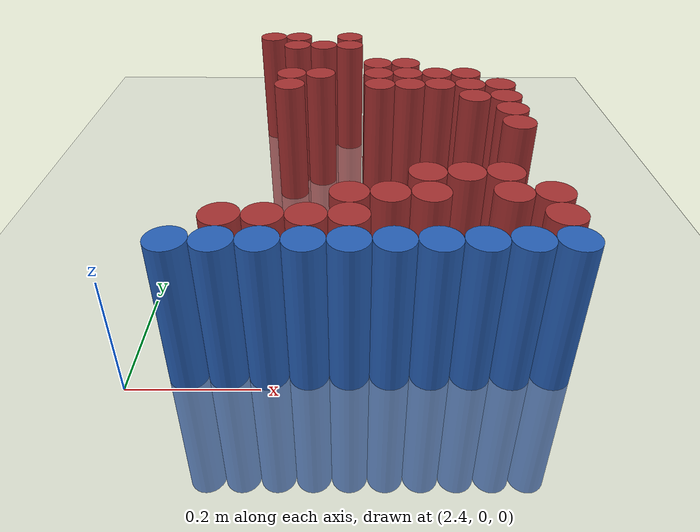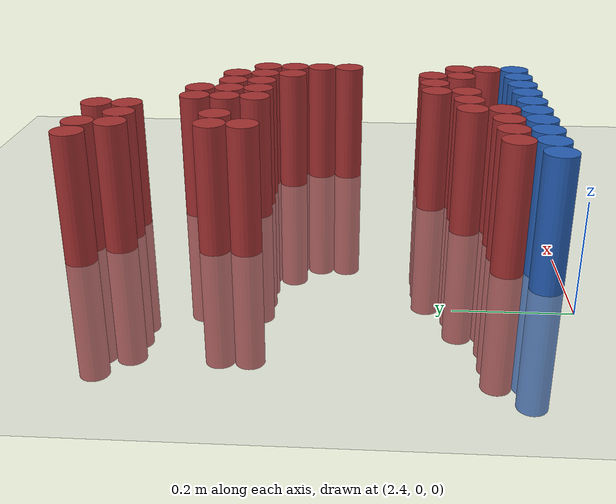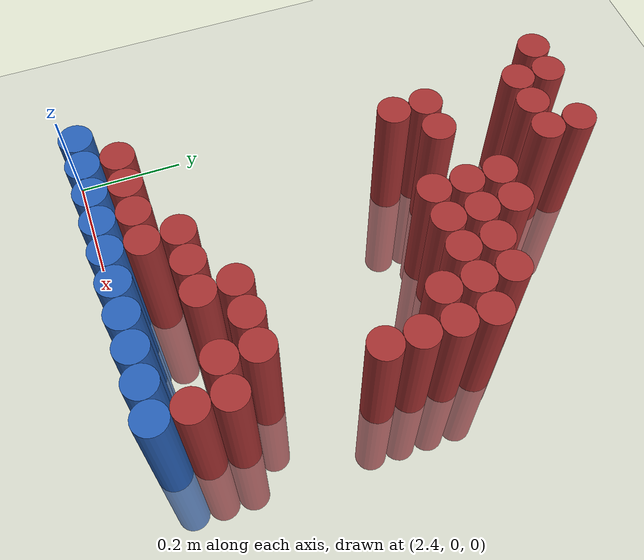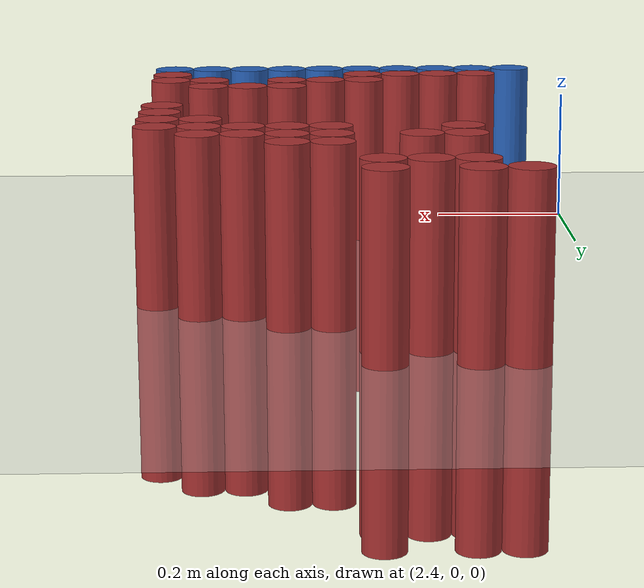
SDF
<sdf version="1.6">
 <world name="default">
  <model name="ground_plane">
   <static>1</static>
   <link name="link">
    <collision name="collision">
     <geometry><plane><normal>0 0 1</normal><size>100 100</size></plane></geometry>
     <surface><friction><ode><mu>100</mu><mu2>50</mu2></ode></friction></surface>
    </collision>
    <visual name="visual">
     <cast_shadows>0</cast_shadows>
     <geometry><plane><normal>0 0 1</normal><size>100 100</size></plane></geometry>
     <material>
      <script><uri>file://media/materials/scripts/gazebo.material</uri><name>Gazebo/Grey</name></script>
     </material>
    </visual>
   </link>
  </model>
  <model name="unit_cylinder_212">
   <static>1</static>
   <pose>2.550000 0.870000 0.000000 0.000000 0.000000 0.000000</pose>
   <link name="link">
    <inertial>
     <mass>1</mass>
     <inertia><ixx>0.145833</ixx><ixy>0</ixy><ixz>0</ixz><iyy>0.145833</iyy><iyz>0</iyz><izz>0.125</izz></inertia>
    </inertial>
    <collision name="collision">
     <geometry><cylinder><radius>0.030000</radius><length>0.5</length></cylinder></geometry>
    </collision>
    <visual name="visual">
     <geometry><cylinder><radius>0.030000</radius><length>0.5</length></cylinder></geometry>
     <material>
      <ambient>0.648000 0.192000 0.192000 1</ambient>
      <diffuse>0.648000 0.192000 0.192000 1</diffuse>
     </material>
     <material>
      <script><name>Gazebo/Grey</name><uri>file://media/materials/scripts/gazebo.material</uri></script>
     </material>
    </visual>
   </link>
  </model>
  <model name="unit_cylinder_213">
   <static>1</static>
   <pose>2.610000 0.870000 0.000000 0.000000 0.000000 0.000000</pose>
   <link name="link">
    <inertial>
     <mass>1</mass>
     <inertia><ixx>0.145833</ixx><ixy>0</ixy><ixz>0</ixz><iyy>0.145833</iyy><iyz>0</iyz><izz>0.125</izz></inertia>
    </inertial>
    <collision name="collision">
     <geometry><cylinder><radius>0.030000</radius><length>0.5</length></cylinder></geometry>
    </collision>
    <visual name="visual">
     <geometry><cylinder><radius>0.030000</radius><length>0.5</length></cylinder></geometry>
     <material>
      <ambient>0.648000 0.192000 0.192000 1</ambient>
      <diffuse>0.648000 0.192000 0.192000 1</diffuse>
     </material>
     <material>
      <script><name>Gazebo/Grey</name><uri>file://media/materials/scripts/gazebo.material</uri></script>
     </material>
    </visual>
   </link>
  </model>
  <model name="unit_cylinder_214">
   <static>1</static>
   <pose>2.730000 0.870000 0.000000 0.000000 0.000000 0.000000</pose>
   <link name="link">
    <inertial>
     <mass>1</mass>
     <inertia><ixx>0.145833</ixx><ixy>0</ixy><ixz>0</ixz><iyy>0.145833</iyy><iyz>0</iyz><izz>0.125</izz></inertia>
    </inertial>
    <collision name="collision">
     <geometry><cylinder><radius>0.030000</radius><length>0.5</length></cylinder></geometry>
    </collision>
    <visual name="visual">
     <geometry><cylinder><radius>0.030000</radius><length>0.5</length></cylinder></geometry>
     <material>
      <ambient>0.648000 0.192000 0.192000 1</ambient>
      <diffuse>0.648000 0.192000 0.192000 1</diffuse>
     </material>
     <material>
      <script><name>Gazebo/Grey</name><uri>file://media/materials/scripts/gazebo.material</uri></script>
     </material>
    </visual>
   </link>
  </model>
  <model name="unit_cylinder_219">
   <static>1</static>
   <pose>2.610000 0.810000 0.000000 0.000000 0.000000 0.000000</pose>
   <link name="link">
    <inertial>
     <mass>1</mass>
     <inertia><ixx>0.145833</ixx><ixy>0</ixy><ixz>0</ixz><iyy>0.145833</iyy><iyz>0</iyz><izz>0.125</izz></inertia>
    </inertial>
    <collision name="collision">
     <geometry><cylinder><radius>0.030000</radius><length>0.5</length></cylinder></geometry>
    </collision>
    <visual name="visual">
     <geometry><cylinder><radius>0.030000</radius><length>0.5</length></cylinder></geometry>
     <material>
      <ambient>0.648000 0.192000 0.192000 1</ambient>
      <diffuse>0.648000 0.192000 0.192000 1</diffuse>
     </material>
     <material>
      <script><name>Gazebo/Grey</name><uri>file://media/materials/scripts/gazebo.material</uri></script>
     </material>
    </visual>
   </link>
  </model>
  <model name="unit_cylinder_220">
   <static>1</static>
   <pose>2.670000 0.810000 0.000000 0.000000 0.000000 0.000000</pose>
   <link name="link">
    <inertial>
     <mass>1</mass>
     <inertia><ixx>0.145833</ixx><ixy>0</ixy><ixz>0</ixz><iyy>0.145833</iyy><iyz>0</iyz><izz>0.125</izz></inertia>
    </inertial>
    <collision name="collision">
     <geometry><cylinder><radius>0.030000</radius><length>0.5</length></cylinder></geometry>
    </collision>
    <visual name="visual">
     <geometry><cylinder><radius>0.030000</radius><length>0.5</length></cylinder></geometry>
     <material>
      <ambient>0.648000 0.192000 0.192000 1</ambient>
      <diffuse>0.648000 0.192000 0.192000 1</diffuse>
     </material>
     <material>
      <script><name>Gazebo/Grey</name><uri>file://media/materials/scripts/gazebo.material</uri></script>
     </material>
    </visual>
   </link>
  </model>
  <model name="unit_cylinder_221">
   <static>1</static>
   <pose>2.730000 0.810000 0.000000 0.000000 0.000000 0.000000</pose>
   <link name="link">
    <inertial>
     <mass>1</mass>
     <inertia><ixx>0.145833</ixx><ixy>0</ixy><ixz>0</ixz><iyy>0.145833</iyy><iyz>0</iyz><izz>0.125</izz></inertia>
    </inertial>
    <collision name="collision">
     <geometry><cylinder><radius>0.030000</radius><length>0.5</length></cylinder></geometry>
    </collision>
    <visual name="visual">
     <geometry><cylinder><radius>0.030000</radius><length>0.5</length></cylinder></geometry>
     <material>
      <ambient>0.648000 0.192000 0.192000 1</ambient>
      <diffuse>0.648000 0.192000 0.192000 1</diffuse>
     </material>
     <material>
      <script><name>Gazebo/Grey</name><uri>file://media/materials/scripts/gazebo.material</uri></script>
     </material>
    </visual>
   </link>
  </model>
  <model name="unit_cylinder_228">
   <static>1</static>
   <pose>2.790000 0.690000 0.000000 0.000000 0.000000 0.000000</pose>
   <link name="link">
    <inertial>
     <mass>1</mass>
     <inertia><ixx>0.145833</ixx><ixy>0</ixy><ixz>0</ixz><iyy>0.145833</iyy><iyz>0</iyz><izz>0.125</izz></inertia>
    </inertial>
    <collision name="collision">
     <geometry><cylinder><radius>0.030000</radius><length>0.5</length></cylinder></geometry>
    </collision>
    <visual name="visual">
     <geometry><cylinder><radius>0.030000</radius><length>0.5</length></cylinder></geometry>
     <material>
      <ambient>0.648000 0.192000 0.192000 1</ambient>
      <diffuse>0.648000 0.192000 0.192000 1</diffuse>
     </material>
     <material>
      <script><name>Gazebo/Grey</name><uri>file://media/materials/scripts/gazebo.material</uri></script>
     </material>
    </visual>
   </link>
  </model>
  <model name="unit_cylinder_229">
   <static>1</static>
   <pose>2.850000 0.690000 0.000000 0.000000 0.000000 0.000000</pose>
   <link name="link">
    <inertial>
     <mass>1</mass>
     <inertia><ixx>0.145833</ixx><ixy>0</ixy><ixz>0</ixz><iyy>0.145833</iyy><iyz>0</iyz><izz>0.125</izz></inertia>
    </inertial>
    <collision name="collision">
     <geometry><cylinder><radius>0.030000</radius><length>0.5</length></cylinder></geometry>
    </collision>
    <visual name="visual">
     <geometry><cylinder><radius>0.030000</radius><length>0.5</length></cylinder></geometry>
     <material>
      <ambient>0.648000 0.192000 0.192000 1</ambient>
      <diffuse>0.648000 0.192000 0.192000 1</diffuse>
     </material>
     <material>
      <script><name>Gazebo/Grey</name><uri>file://media/materials/scripts/gazebo.material</uri></script>
     </material>
    </visual>
   </link>
  </model>
  <model name="unit_cylinder_235">
   <static>1</static>
   <pose>2.610000 0.630000 0.000000 0.000000 0.000000 0.000000</pose>
   <link name="link">
    <inertial>
     <mass>1</mass>
     <inertia><ixx>0.145833</ixx><ixy>0</ixy><ixz>0</ixz><iyy>0.145833</iyy><iyz>0</iyz><izz>0.125</izz></inertia>
    </inertial>
    <collision name="collision">
     <geometry><cylinder><radius>0.030000</radius><length>0.5</length></cylinder></geometry>
    </collision>
    <visual name="visual">
     <geometry><cylinder><radius>0.030000</radius><length>0.5</length></cylinder></geometry>
     <material>
      <ambient>0.648000 0.192000 0.192000 1</ambient>
      <diffuse>0.648000 0.192000 0.192000 1</diffuse>
     </material>
     <material>
      <script><name>Gazebo/Grey</name><uri>file://media/materials/scripts/gazebo.material</uri></script>
     </material>
    </visual>
   </link>
  </model>
  <model name="unit_cylinder_236">
   <static>1</static>
   <pose>2.670000 0.630000 0.000000 0.000000 0.000000 0.000000</pose>
   <link name="link">
    <inertial>
     <mass>1</mass>
     <inertia><ixx>0.145833</ixx><ixy>0</ixy><ixz>0</ixz><iyy>0.145833</iyy><iyz>0</iyz><izz>0.125</izz></inertia>
    </inertial>
    <collision name="collision">
     <geometry><cylinder><radius>0.030000</radius><length>0.5</length></cylinder></geometry>
    </collision>
    <visual name="visual">
     <geometry><cylinder><radius>0.030000</radius><length>0.5</length></cylinder></geometry>
     <material>
      <ambient>0.648000 0.192000 0.192000 1</ambient>
      <diffuse>0.648000 0.192000 0.192000 1</diffuse>
     </material>
     <material>
      <script><name>Gazebo/Grey</name><uri>file://media/materials/scripts/gazebo.material</uri></script>
     </material>
    </visual>
   </link>
  </model>
  <model name="unit_cylinder_237">
   <static>1</static>
   <pose>2.790000 0.630000 0.000000 0.000000 0.000000 0.000000</pose>
   <link name="link">
    <inertial>
     <mass>1</mass>
     <inertia><ixx>0.145833</ixx><ixy>0</ixy><ixz>0</ixz><iyy>0.145833</iyy><iyz>0</iyz><izz>0.125</izz></inertia>
    </inertial>
    <collision name="collision">
     <geometry><cylinder><radius>0.030000</radius><length>0.5</length></cylinder></geometry>
    </collision>
    <visual name="visual">
     <geometry><cylinder><radius>0.030000</radius><length>0.5</length></cylinder></geometry>
     <material>
      <ambient>0.648000 0.192000 0.192000 1</ambient>
      <diffuse>0.648000 0.192000 0.192000 1</diffuse>
     </material>
     <material>
      <script><name>Gazebo/Grey</name><uri>file://media/materials/scripts/gazebo.material</uri></script>
     </material>
    </visual>
   </link>
  </model>
  <model name="unit_cylinder_238">
   <static>1</static>
   <pose>2.850000 0.630000 0.000000 0.000000 0.000000 0.000000</pose>
   <link name="link">
    <inertial>
     <mass>1</mass>
     <inertia><ixx>0.145833</ixx><ixy>0</ixy><ixz>0</ixz><iyy>0.145833</iyy><iyz>0</iyz><izz>0.125</izz></inertia>
    </inertial>
    <collision name="collision">
     <geometry><cylinder><radius>0.030000</radius><length>0.5</length></cylinder></geometry>
    </collision>
    <visual name="visual">
     <geometry><cylinder><radius>0.030000</radius><length>0.5</length></cylinder></geometry>
     <material>
      <ambient>0.648000 0.192000 0.192000 1</ambient>
      <diffuse>0.648000 0.192000 0.192000 1</diffuse>
     </material>
     <material>
      <script><name>Gazebo/Grey</name><uri>file://media/materials/scripts/gazebo.material</uri></script>
     </material>
    </visual>
   </link>
  </model>
  <model name="unit_cylinder_239">
   <static>1</static>
   <pose>2.910000 0.630000 0.000000 0.000000 0.000000 0.000000</pose>
   <link name="link">
    <inertial>
     <mass>1</mass>
     <inertia><ixx>0.145833</ixx><ixy>0</ixy><ixz>0</ixz><iyy>0.145833</iyy><iyz>0</iyz><izz>0.125</izz></inertia>
    </inertial>
    <collision name="collision">
     <geometry><cylinder><radius>0.030000</radius><length>0.5</length></cylinder></geometry>
    </collision>
    <visual name="visual">
     <geometry><cylinder><radius>0.030000</radius><length>0.5</length></cylinder></geometry>
     <material>
      <ambient>0.648000 0.192000 0.192000 1</ambient>
      <diffuse>0.648000 0.192000 0.192000 1</diffuse>
     </material>
     <material>
      <script><name>Gazebo/Grey</name><uri>file://media/materials/scripts/gazebo.material</uri></script>
     </material>
    </visual>
   </link>
  </model>
  <model name="unit_cylinder_240">
   <static>1</static>
   <pose>2.970000 0.630000 0.000000 0.000000 0.000000 0.000000</pose>
   <link name="link">
    <inertial>
     <mass>1</mass>
     <inertia><ixx>0.145833</ixx><ixy>0</ixy><ixz>0</ixz><iyy>0.145833</iyy><iyz>0</iyz><izz>0.125</izz></inertia>
    </inertial>
    <collision name="collision">
     <geometry><cylinder><radius>0.030000</radius><length>0.5</length></cylinder></geometry>
    </collision>
    <visual name="visual">
     <geometry><cylinder><radius>0.030000</radius><length>0.5</length></cylinder></geometry>
     <material>
      <ambient>0.648000 0.192000 0.192000 1</ambient>
      <diffuse>0.648000 0.192000 0.192000 1</diffuse>
     </material>
     <material>
      <script><name>Gazebo/Grey</name><uri>file://media/materials/scripts/gazebo.material</uri></script>
     </material>
    </visual>
   </link>
  </model>
  <model name="unit_cylinder_247">
   <static>1</static>
   <pose>2.610000 0.570000 0.000000 0.000000 0.000000 0.000000</pose>
   <link name="link">
    <inertial>
     <mass>1</mass>
     <inertia><ixx>0.145833</ixx><ixy>0</ixy><ixz>0</ixz><iyy>0.145833</iyy><iyz>0</iyz><izz>0.125</izz></inertia>
    </inertial>
    <collision name="collision">
     <geometry><cylinder><radius>0.030000</radius><length>0.5</length></cylinder></geometry>
    </collision>
    <visual name="visual">
     <geometry><cylinder><radius>0.030000</radius><length>0.5</length></cylinder></geometry>
     <material>
      <ambient>0.648000 0.192000 0.192000 1</ambient>
      <diffuse>0.648000 0.192000 0.192000 1</diffuse>
     </material>
     <material>
      <script><name>Gazebo/Grey</name><uri>file://media/materials/scripts/gazebo.material</uri></script>
     </material>
    </visual>
   </link>
  </model>
  <model name="unit_cylinder_248">
   <static>1</static>
   <pose>2.790000 0.570000 0.000000 0.000000 0.000000 0.000000</pose>
   <link name="link">
    <inertial>
     <mass>1</mass>
     <inertia><ixx>0.145833</ixx><ixy>0</ixy><ixz>0</ixz><iyy>0.145833</iyy><iyz>0</iyz><izz>0.125</izz></inertia>
    </inertial>
    <collision name="collision">
     <geometry><cylinder><radius>0.030000</radius><length>0.5</length></cylinder></geometry>
    </collision>
    <visual name="visual">
     <geometry><cylinder><radius>0.030000</radius><length>0.5</length></cylinder></geometry>
     <material>
      <ambient>0.648000 0.192000 0.192000 1</ambient>
      <diffuse>0.648000 0.192000 0.192000 1</diffuse>
     </material>
     <material>
      <script><name>Gazebo/Grey</name><uri>file://media/materials/scripts/gazebo.material</uri></script>
     </material>
    </visual>
   </link>
  </model>
  <model name="unit_cylinder_249">
   <static>1</static>
   <pose>2.850000 0.570000 0.000000 0.000000 0.000000 0.000000</pose>
   <link name="link">
    <inertial>
     <mass>1</mass>
     <inertia><ixx>0.145833</ixx><ixy>0</ixy><ixz>0</ixz><iyy>0.145833</iyy><iyz>0</iyz><izz>0.125</izz></inertia>
    </inertial>
    <collision name="collision">
     <geometry><cylinder><radius>0.030000</radius><length>0.5</length></cylinder></geometry>
    </collision>
    <visual name="visual">
     <geometry><cylinder><radius>0.030000</radius><length>0.5</length></cylinder></geometry>
     <material>
      <ambient>0.648000 0.192000 0.192000 1</ambient>
      <diffuse>0.648000 0.192000 0.192000 1</diffuse>
     </material>
     <material>
      <script><name>Gazebo/Grey</name><uri>file://media/materials/scripts/gazebo.material</uri></script>
     </material>
    </visual>
   </link>
  </model>
  <model name="unit_cylinder_250">
   <static>1</static>
   <pose>2.910000 0.570000 0.000000 0.000000 0.000000 0.000000</pose>
   <link name="link">
    <inertial>
     <mass>1</mass>
     <inertia><ixx>0.145833</ixx><ixy>0</ixy><ixz>0</ixz><iyy>0.145833</iyy><iyz>0</iyz><izz>0.125</izz></inertia>
    </inertial>
    <collision name="collision">
     <geometry><cylinder><radius>0.030000</radius><length>0.5</length></cylinder></geometry>
    </collision>
    <visual name="visual">
     <geometry><cylinder><radius>0.030000</radius><length>0.5</length></cylinder></geometry>
     <material>
      <ambient>0.648000 0.192000 0.192000 1</ambient>
      <diffuse>0.648000 0.192000 0.192000 1</diffuse>
     </material>
     <material>
      <script><name>Gazebo/Grey</name><uri>file://media/materials/scripts/gazebo.material</uri></script>
     </material>
    </visual>
   </link>
  </model>
  <model name="unit_cylinder_251">
   <static>1</static>
   <pose>2.970000 0.570000 0.000000 0.000000 0.000000 0.000000</pose>
   <link name="link">
    <inertial>
     <mass>1</mass>
     <inertia><ixx>0.145833</ixx><ixy>0</ixy><ixz>0</ixz><iyy>0.145833</iyy><iyz>0</iyz><izz>0.125</izz></inertia>
    </inertial>
    <collision name="collision">
     <geometry><cylinder><radius>0.030000</radius><length>0.5</length></cylinder></geometry>
    </collision>
    <visual name="visual">
     <geometry><cylinder><radius>0.030000</radius><length>0.5</length></cylinder></geometry>
     <material>
      <ambient>0.648000 0.192000 0.192000 1</ambient>
      <diffuse>0.648000 0.192000 0.192000 1</diffuse>
     </material>
     <material>
      <script><name>Gazebo/Grey</name><uri>file://media/materials/scripts/gazebo.material</uri></script>
     </material>
    </visual>
   </link>
  </model>
  <model name="unit_cylinder_252">
   <static>1</static>
   <pose>3.030000 0.570000 0.000000 0.000000 0.000000 0.000000</pose>
   <link name="link">
    <inertial>
     <mass>1</mass>
     <inertia><ixx>0.145833</ixx><ixy>0</ixy><ixz>0</ixz><iyy>0.145833</iyy><iyz>0</iyz><izz>0.125</izz></inertia>
    </inertial>
    <collision name="collision">
     <geometry><cylinder><radius>0.030000</radius><length>0.5</length></cylinder></geometry>
    </collision>
    <visual name="visual">
     <geometry><cylinder><radius>0.030000</radius><length>0.5</length></cylinder></geometry>
     <material>
      <ambient>0.648000 0.192000 0.192000 1</ambient>
      <diffuse>0.648000 0.192000 0.192000 1</diffuse>
     </material>
     <material>
      <script><name>Gazebo/Grey</name><uri>file://media/materials/scripts/gazebo.material</uri></script>
     </material>
    </visual>
   </link>
  </model>
  <model name="unit_cylinder_254">
   <static>1</static>
   <pose>2.970000 0.510000 0.000000 0.000000 0.000000 0.000000</pose>
   <link name="link">
    <inertial>
     <mass>1</mass>
     <inertia><ixx>0.145833</ixx><ixy>0</ixy><ixz>0</ixz><iyy>0.145833</iyy><iyz>0</iyz><izz>0.125</izz></inertia>
    </inertial>
    <collision name="collision">
     <geometry><cylinder><radius>0.030000</radius><length>0.5</length></cylinder></geometry>
    </collision>
    <visual name="visual">
     <geometry><cylinder><radius>0.030000</radius><length>0.5</length></cylinder></geometry>
     <material>
      <ambient>0.648000 0.192000 0.192000 1</ambient>
      <diffuse>0.648000 0.192000 0.192000 1</diffuse>
     </material>
     <material>
      <script><name>Gazebo/Grey</name><uri>file://media/materials/scripts/gazebo.material</uri></script>
     </material>
    </visual>
   </link>
  </model>
  <model name="unit_cylinder_255">
   <static>1</static>
   <pose>3.030000 0.510000 0.000000 0.000000 0.000000 0.000000</pose>
   <link name="link">
    <inertial>
     <mass>1</mass>
     <inertia><ixx>0.145833</ixx><ixy>0</ixy><ixz>0</ixz><iyy>0.145833</iyy><iyz>0</iyz><izz>0.125</izz></inertia>
    </inertial>
    <collision name="collision">
     <geometry><cylinder><radius>0.030000</radius><length>0.5</length></cylinder></geometry>
    </collision>
    <visual name="visual">
     <geometry><cylinder><radius>0.030000</radius><length>0.5</length></cylinder></geometry>
     <material>
      <ambient>0.648000 0.192000 0.192000 1</ambient>
      <diffuse>0.648000 0.192000 0.192000 1</diffuse>
     </material>
     <material>
      <script><name>Gazebo/Grey</name><uri>file://media/materials/scripts/gazebo.material</uri></script>
     </material>
    </visual>
   </link>
  </model>
  <model name="unit_cylinder_258">
   <static>1</static>
   <pose>3.030000 0.450000 0.000000 0.000000 0.000000 0.000000</pose>
   <link name="link">
    <inertial>
     <mass>1</mass>
     <inertia><ixx>0.145833</ixx><ixy>0</ixy><ixz>0</ixz><iyy>0.145833</iyy><iyz>0</iyz><izz>0.125</izz></inertia>
    </inertial>
    <collision name="collision">
     <geometry><cylinder><radius>0.030000</radius><length>0.5</length></cylinder></geometry>
    </collision>
    <visual name="visual">
     <geometry><cylinder><radius>0.030000</radius><length>0.5</length></cylinder></geometry>
     <material>
      <ambient>0.648000 0.192000 0.192000 1</ambient>
      <diffuse>0.648000 0.192000 0.192000 1</diffuse>
     </material>
     <material>
      <script><name>Gazebo/Grey</name><uri>file://media/materials/scripts/gazebo.material</uri></script>
     </material>
    </visual>
   </link>
  </model>
  <model name="unit_cylinder_262">
   <static>1</static>
   <pose>3.030000 0.390000 0.000000 0.000000 0.000000 0.000000</pose>
   <link name="link">
    <inertial>
     <mass>1</mass>
     <inertia><ixx>0.145833</ixx><ixy>0</ixy><ixz>0</ixz><iyy>0.145833</iyy><iyz>0</iyz><izz>0.125</izz></inertia>
    </inertial>
    <collision name="collision">
     <geometry><cylinder><radius>0.030000</radius><length>0.5</length></cylinder></geometry>
    </collision>
    <visual name="visual">
     <geometry><cylinder><radius>0.030000</radius><length>0.5</length></cylinder></geometry>
     <material>
      <ambient>0.648000 0.192000 0.192000 1</ambient>
      <diffuse>0.648000 0.192000 0.192000 1</diffuse>
     </material>
     <material>
      <script><name>Gazebo/Grey</name><uri>file://media/materials/scripts/gazebo.material</uri></script>
     </material>
    </visual>
   </link>
  </model>
  <model name="unit_cylinder_268">
   <static>1</static>
   <pose>2.850000 0.210000 0.000000 0.000000 0.000000 0.000000</pose>
   <link name="link">
    <inertial>
     <mass>1</mass>
     <inertia><ixx>0.145833</ixx><ixy>0</ixy><ixz>0</ixz><iyy>0.145833</iyy><iyz>0</iyz><izz>0.125</izz></inertia>
    </inertial>
    <collision name="collision">
     <geometry><cylinder><radius>0.030000</radius><length>0.5</length></cylinder></geometry>
    </collision>
    <visual name="visual">
     <geometry><cylinder><radius>0.030000</radius><length>0.5</length></cylinder></geometry>
     <material>
      <ambient>0.648000 0.192000 0.192000 1</ambient>
      <diffuse>0.648000 0.192000 0.192000 1</diffuse>
     </material>
     <material>
      <script><name>Gazebo/Grey</name><uri>file://media/materials/scripts/gazebo.material</uri></script>
     </material>
    </visual>
   </link>
  </model>
  <model name="unit_cylinder_269">
   <static>1</static>
   <pose>2.910000 0.210000 0.000000 0.000000 0.000000 0.000000</pose>
   <link name="link">
    <inertial>
     <mass>1</mass>
     <inertia><ixx>0.145833</ixx><ixy>0</ixy><ixz>0</ixz><iyy>0.145833</iyy><iyz>0</iyz><izz>0.125</izz></inertia>
    </inertial>
    <collision name="collision">
     <geometry><cylinder><radius>0.030000</radius><length>0.5</length></cylinder></geometry>
    </collision>
    <visual name="visual">
     <geometry><cylinder><radius>0.030000</radius><length>0.5</length></cylinder></geometry>
     <material>
      <ambient>0.648000 0.192000 0.192000 1</ambient>
      <diffuse>0.648000 0.192000 0.192000 1</diffuse>
     </material>
     <material>
      <script><name>Gazebo/Grey</name><uri>file://media/materials/scripts/gazebo.material</uri></script>
     </material>
    </visual>
   </link>
  </model>
  <model name="unit_cylinder_270">
   <static>1</static>
   <pose>2.970000 0.210000 0.000000 0.000000 0.000000 0.000000</pose>
   <link name="link">
    <inertial>
     <mass>1</mass>
     <inertia><ixx>0.145833</ixx><ixy>0</ixy><ixz>0</ixz><iyy>0.145833</iyy><iyz>0</iyz><izz>0.125</izz></inertia>
    </inertial>
    <collision name="collision">
     <geometry><cylinder><radius>0.030000</radius><length>0.5</length></cylinder></geometry>
    </collision>
    <visual name="visual">
     <geometry><cylinder><radius>0.030000</radius><length>0.5</length></cylinder></geometry>
     <material>
      <ambient>0.648000 0.192000 0.192000 1</ambient>
      <diffuse>0.648000 0.192000 0.192000 1</diffuse>
     </material>
     <material>
      <script><name>Gazebo/Grey</name><uri>file://media/materials/scripts/gazebo.material</uri></script>
     </material>
    </visual>
   </link>
  </model>
  <model name="unit_cylinder_273">
   <static>1</static>
   <pose>2.730000 0.150000 0.000000 0.000000 0.000000 0.000000</pose>
   <link name="link">
    <inertial>
     <mass>1</mass>
     <inertia><ixx>0.145833</ixx><ixy>0</ixy><ixz>0</ixz><iyy>0.145833</iyy><iyz>0</iyz><izz>0.125</izz></inertia>
    </inertial>
    <collision name="collision">
     <geometry><cylinder><radius>0.030000</radius><length>0.5</length></cylinder></geometry>
    </collision>
    <visual name="visual">
     <geometry><cylinder><radius>0.030000</radius><length>0.5</length></cylinder></geometry>
     <material>
      <ambient>0.648000 0.192000 0.192000 1</ambient>
      <diffuse>0.648000 0.192000 0.192000 1</diffuse>
     </material>
     <material>
      <script><name>Gazebo/Grey</name><uri>file://media/materials/scripts/gazebo.material</uri></script>
     </material>
    </visual>
   </link>
  </model>
  <model name="unit_cylinder_274">
   <static>1</static>
   <pose>2.790000 0.150000 0.000000 0.000000 0.000000 0.000000</pose>
   <link name="link">
    <inertial>
     <mass>1</mass>
     <inertia><ixx>0.145833</ixx><ixy>0</ixy><ixz>0</ixz><iyy>0.145833</iyy><iyz>0</iyz><izz>0.125</izz></inertia>
    </inertial>
    <collision name="collision">
     <geometry><cylinder><radius>0.030000</radius><length>0.5</length></cylinder></geometry>
    </collision>
    <visual name="visual">
     <geometry><cylinder><radius>0.030000</radius><length>0.5</length></cylinder></geometry>
     <material>
      <ambient>0.648000 0.192000 0.192000 1</ambient>
      <diffuse>0.648000 0.192000 0.192000 1</diffuse>
     </material>
     <material>
      <script><name>Gazebo/Grey</name><uri>file://media/materials/scripts/gazebo.material</uri></script>
     </material>
    </visual>
   </link>
  </model>
  <model name="unit_cylinder_275">
   <static>1</static>
   <pose>2.850000 0.150000 0.000000 0.000000 0.000000 0.000000</pose>
   <link name="link">
    <inertial>
     <mass>1</mass>
     <inertia><ixx>0.145833</ixx><ixy>0</ixy><ixz>0</ixz><iyy>0.145833</iyy><iyz>0</iyz><izz>0.125</izz></inertia>
    </inertial>
    <collision name="collision">
     <geometry><cylinder><radius>0.030000</radius><length>0.5</length></cylinder></geometry>
    </collision>
    <visual name="visual">
     <geometry><cylinder><radius>0.030000</radius><length>0.5</length></cylinder></geometry>
     <material>
      <ambient>0.648000 0.192000 0.192000 1</ambient>
      <diffuse>0.648000 0.192000 0.192000 1</diffuse>
     </material>
     <material>
      <script><name>Gazebo/Grey</name><uri>file://media/materials/scripts/gazebo.material</uri></script>
     </material>
    </visual>
   </link>
  </model>
  <model name="unit_cylinder_276">
   <static>1</static>
   <pose>2.970000 0.150000 0.000000 0.000000 0.000000 0.000000</pose>
   <link name="link">
    <inertial>
     <mass>1</mass>
     <inertia><ixx>0.145833</ixx><ixy>0</ixy><ixz>0</ixz><iyy>0.145833</iyy><iyz>0</iyz><izz>0.125</izz></inertia>
    </inertial>
    <collision name="collision">
     <geometry><cylinder><radius>0.030000</radius><length>0.5</length></cylinder></geometry>
    </collision>
    <visual name="visual">
     <geometry><cylinder><radius>0.030000</radius><length>0.5</length></cylinder></geometry>
     <material>
      <ambient>0.648000 0.192000 0.192000 1</ambient>
      <diffuse>0.648000 0.192000 0.192000 1</diffuse>
     </material>
     <material>
      <script><name>Gazebo/Grey</name><uri>file://media/materials/scripts/gazebo.material</uri></script>
     </material>
    </visual>
   </link>
  </model>
  <model name="unit_cylinder_277">
   <static>1</static>
   <pose>3.030000 0.150000 0.000000 0.000000 0.000000 0.000000</pose>
   <link name="link">
    <inertial>
     <mass>1</mass>
     <inertia><ixx>0.145833</ixx><ixy>0</ixy><ixz>0</ixz><iyy>0.145833</iyy><iyz>0</iyz><izz>0.125</izz></inertia>
    </inertial>
    <collision name="collision">
     <geometry><cylinder><radius>0.030000</radius><length>0.5</length></cylinder></geometry>
    </collision>
    <visual name="visual">
     <geometry><cylinder><radius>0.030000</radius><length>0.5</length></cylinder></geometry>
     <material>
      <ambient>0.648000 0.192000 0.192000 1</ambient>
      <diffuse>0.648000 0.192000 0.192000 1</diffuse>
     </material>
     <material>
      <script><name>Gazebo/Grey</name><uri>file://media/materials/scripts/gazebo.material</uri></script>
     </material>
    </visual>
   </link>
  </model>
  <model name="unit_cylinder_289">
   <static>1</static>
   <pose>2.550000 0.090000 0.000000 0.000000 0.000000 0.000000</pose>
   <link name="link">
    <inertial>
     <mass>1</mass>
     <inertia><ixx>0.145833</ixx><ixy>0</ixy><ixz>0</ixz><iyy>0.145833</iyy><iyz>0</iyz><izz>0.125</izz></inertia>
    </inertial>
    <collision name="collision">
     <geometry><cylinder><radius>0.030000</radius><length>0.5</length></cylinder></geometry>
    </collision>
    <visual name="visual">
     <geometry><cylinder><radius>0.030000</radius><length>0.5</length></cylinder></geometry>
     <material>
      <ambient>0.648000 0.192000 0.192000 1</ambient>
      <diffuse>0.648000 0.192000 0.192000 1</diffuse>
     </material>
     <material>
      <script><name>Gazebo/Grey</name><uri>file://media/materials/scripts/gazebo.material</uri></script>
     </material>
    </visual>
   </link>
  </model>
  <model name="unit_cylinder_290">
   <static>1</static>
   <pose>2.610000 0.090000 0.000000 0.000000 0.000000 0.000000</pose>
   <link name="link">
    <inertial>
     <mass>1</mass>
     <inertia><ixx>0.145833</ixx><ixy>0</ixy><ixz>0</ixz><iyy>0.145833</iyy><iyz>0</iyz><izz>0.125</izz></inertia>
    </inertial>
    <collision name="collision">
     <geometry><cylinder><radius>0.030000</radius><length>0.5</length></cylinder></geometry>
    </collision>
    <visual name="visual">
     <geometry><cylinder><radius>0.030000</radius><length>0.5</length></cylinder></geometry>
     <material>
      <ambient>0.648000 0.192000 0.192000 1</ambient>
      <diffuse>0.648000 0.192000 0.192000 1</diffuse>
     </material>
     <material>
      <script><name>Gazebo/Grey</name><uri>file://media/materials/scripts/gazebo.material</uri></script>
     </material>
    </visual>
   </link>
  </model>
  <model name="unit_cylinder_291">
   <static>1</static>
   <pose>2.670000 0.090000 0.000000 0.000000 0.000000 0.000000</pose>
   <link name="link">
    <inertial>
     <mass>1</mass>
     <inertia><ixx>0.145833</ixx><ixy>0</ixy><ixz>0</ixz><iyy>0.145833</iyy><iyz>0</iyz><izz>0.125</izz></inertia>
    </inertial>
    <collision name="collision">
     <geometry><cylinder><radius>0.030000</radius><length>0.5</length></cylinder></geometry>
    </collision>
    <visual name="visual">
     <geometry><cylinder><radius>0.030000</radius><length>0.5</length></cylinder></geometry>
     <material>
      <ambient>0.648000 0.192000 0.192000 1</ambient>
      <diffuse>0.648000 0.192000 0.192000 1</diffuse>
     </material>
     <material>
      <script><name>Gazebo/Grey</name><uri>file://media/materials/scripts/gazebo.material</uri></script>
     </material>
    </visual>
   </link>
  </model>
  <model name="unit_cylinder_292">
   <static>1</static>
   <pose>2.730000 0.090000 0.000000 0.000000 0.000000 0.000000</pose>
   <link name="link">
    <inertial>
     <mass>1</mass>
     <inertia><ixx>0.145833</ixx><ixy>0</ixy><ixz>0</ixz><iyy>0.145833</iyy><iyz>0</iyz><izz>0.125</izz></inertia>
    </inertial>
    <collision name="collision">
     <geometry><cylinder><radius>0.030000</radius><length>0.5</length></cylinder></geometry>
    </collision>
    <visual name="visual">
     <geometry><cylinder><radius>0.030000</radius><length>0.5</length></cylinder></geometry>
     <material>
      <ambient>0.648000 0.192000 0.192000 1</ambient>
      <diffuse>0.648000 0.192000 0.192000 1</diffuse>
     </material>
     <material>
      <script><name>Gazebo/Grey</name><uri>file://media/materials/scripts/gazebo.material</uri></script>
     </material>
    </visual>
   </link>
  </model>
  <model name="unit_cylinder_293">
   <static>1</static>
   <pose>3.030000 0.090000 0.000000 0.000000 0.000000 0.000000</pose>
   <link name="link">
    <inertial>
     <mass>1</mass>
     <inertia><ixx>0.145833</ixx><ixy>0</ixy><ixz>0</ixz><iyy>0.145833</iyy><iyz>0</iyz><izz>0.125</izz></inertia>
    </inertial>
    <collision name="collision">
     <geometry><cylinder><radius>0.030000</radius><length>0.5</length></cylinder></geometry>
    </collision>
    <visual name="visual">
     <geometry><cylinder><radius>0.030000</radius><length>0.5</length></cylinder></geometry>
     <material>
      <ambient>0.648000 0.192000 0.192000 1</ambient>
      <diffuse>0.648000 0.192000 0.192000 1</diffuse>
     </material>
     <material>
      <script><name>Gazebo/Grey</name><uri>file://media/materials/scripts/gazebo.material</uri></script>
     </material>
    </visual>
   </link>
  </model>
  <model name="unit_cylinder_306">
   <static>1</static>
   <pose>2.490000 0.030000 0.000000 0.000000 0.000000 0.000000</pose>
   <link name="link">
    <inertial>
     <mass>1</mass>
     <inertia><ixx>0.145833</ixx><ixy>0</ixy><ixz>0</ixz><iyy>0.145833</iyy><iyz>0</iyz><izz>0.125</izz></inertia>
    </inertial>
    <collision name="collision">
     <geometry><cylinder><radius>0.030000</radius><length>0.5</length></cylinder></geometry>
    </collision>
    <visual name="visual">
     <geometry><cylinder><radius>0.030000</radius><length>0.5</length></cylinder></geometry>
     <material>
      <ambient>0.152000 0.379000 0.720000 1</ambient>
      <diffuse>0.152000 0.379000 0.720000 1</diffuse>
     </material>
     <material>
      <script><name>Gazebo/Grey</name><uri>file://media/materials/scripts/gazebo.material</uri></script>
     </material>
    </visual>
   </link>
  </model>
  <model name="unit_cylinder_307">
   <static>1</static>
   <pose>2.550000 0.030000 0.000000 0.000000 0.000000 0.000000</pose>
   <link name="link">
    <inertial>
     <mass>1</mass>
     <inertia><ixx>0.145833</ixx><ixy>0</ixy><ixz>0</ixz><iyy>0.145833</iyy><iyz>0</iyz><izz>0.125</izz></inertia>
    </inertial>
    <collision name="collision">
     <geometry><cylinder><radius>0.030000</radius><length>0.5</length></cylinder></geometry>
    </collision>
    <visual name="visual">
     <geometry><cylinder><radius>0.030000</radius><length>0.5</length></cylinder></geometry>
     <material>
      <ambient>0.152000 0.379000 0.720000 1</ambient>
      <diffuse>0.152000 0.379000 0.720000 1</diffuse>
     </material>
     <material>
      <script><name>Gazebo/Grey</name><uri>file://media/materials/scripts/gazebo.material</uri></script>
     </material>
    </visual>
   </link>
  </model>
  <model name="unit_cylinder_308">
   <static>1</static>
   <pose>2.610000 0.030000 0.000000 0.000000 0.000000 0.000000</pose>
   <link name="link">
    <inertial>
     <mass>1</mass>
     <inertia><ixx>0.145833</ixx><ixy>0</ixy><ixz>0</ixz><iyy>0.145833</iyy><iyz>0</iyz><izz>0.125</izz></inertia>
    </inertial>
    <collision name="collision">
     <geometry><cylinder><radius>0.030000</radius><length>0.5</length></cylinder></geometry>
    </collision>
    <visual name="visual">
     <geometry><cylinder><radius>0.030000</radius><length>0.5</length></cylinder></geometry>
     <material>
      <ambient>0.152000 0.379000 0.720000 1</ambient>
      <diffuse>0.152000 0.379000 0.720000 1</diffuse>
     </material>
     <material>
      <script><name>Gazebo/Grey</name><uri>file://media/materials/scripts/gazebo.material</uri></script>
     </material>
    </visual>
   </link>
  </model>
  <model name="unit_cylinder_309">
   <static>1</static>
   <pose>2.670000 0.030000 0.000000 0.000000 0.000000 0.000000</pose>
   <link name="link">
    <inertial>
     <mass>1</mass>
     <inertia><ixx>0.145833</ixx><ixy>0</ixy><ixz>0</ixz><iyy>0.145833</iyy><iyz>0</iyz><izz>0.125</izz></inertia>
    </inertial>
    <collision name="collision">
     <geometry><cylinder><radius>0.030000</radius><length>0.5</length></cylinder></geometry>
    </collision>
    <visual name="visual">
     <geometry><cylinder><radius>0.030000</radius><length>0.5</length></cylinder></geometry>
     <material>
      <ambient>0.152000 0.379000 0.720000 1</ambient>
      <diffuse>0.152000 0.379000 0.720000 1</diffuse>
     </material>
     <material>
      <script><name>Gazebo/Grey</name><uri>file://media/materials/scripts/gazebo.material</uri></script>
     </material>
    </visual>
   </link>
  </model>
  <model name="unit_cylinder_310">
   <static>1</static>
   <pose>2.730000 0.030000 0.000000 0.000000 0.000000 0.000000</pose>
   <link name="link">
    <inertial>
     <mass>1</mass>
     <inertia><ixx>0.145833</ixx><ixy>0</ixy><ixz>0</ixz><iyy>0.145833</iyy><iyz>0</iyz><izz>0.125</izz></inertia>
    </inertial>
    <collision name="collision">
     <geometry><cylinder><radius>0.030000</radius><length>0.5</length></cylinder></geometry>
    </collision>
    <visual name="visual">
     <geometry><cylinder><radius>0.030000</radius><length>0.5</length></cylinder></geometry>
     <material>
      <ambient>0.152000 0.379000 0.720000 1</ambient>
      <diffuse>0.152000 0.379000 0.720000 1</diffuse>
     </material>
     <material>
      <script><name>Gazebo/Grey</name><uri>file://media/materials/scripts/gazebo.material</uri></script>
     </material>
    </visual>
   </link>
  </model>
  <model name="unit_cylinder_311">
   <static>1</static>
   <pose>2.790000 0.030000 0.000000 0.000000 0.000000 0.000000</pose>
   <link name="link">
    <inertial>
     <mass>1</mass>
     <inertia><ixx>0.145833</ixx><ixy>0</ixy><ixz>0</ixz><iyy>0.145833</iyy><iyz>0</iyz><izz>0.125</izz></inertia>
    </inertial>
    <collision name="collision">
     <geometry><cylinder><radius>0.030000</radius><length>0.5</length></cylinder></geometry>
    </collision>
    <visual name="visual">
     <geometry><cylinder><radius>0.030000</radius><length>0.5</length></cylinder></geometry>
     <material>
      <ambient>0.152000 0.379000 0.720000 1</ambient>
      <diffuse>0.152000 0.379000 0.720000 1</diffuse>
     </material>
     <material>
      <script><name>Gazebo/Grey</name><uri>file://media/materials/scripts/gazebo.material</uri></script>
     </material>
    </visual>
   </link>
  </model>
  <model name="unit_cylinder_312">
   <static>1</static>
   <pose>2.850000 0.030000 0.000000 0.000000 0.000000 0.000000</pose>
   <link name="link">
    <inertial>
     <mass>1</mass>
     <inertia><ixx>0.145833</ixx><ixy>0</ixy><ixz>0</ixz><iyy>0.145833</iyy><iyz>0</iyz><izz>0.125</izz></inertia>
    </inertial>
    <collision name="collision">
     <geometry><cylinder><radius>0.030000</radius><length>0.5</length></cylinder></geometry>
    </collision>
    <visual name="visual">
     <geometry><cylinder><radius>0.030000</radius><length>0.5</length></cylinder></geometry>
     <material>
      <ambient>0.152000 0.379000 0.720000 1</ambient>
      <diffuse>0.152000 0.379000 0.720000 1</diffuse>
     </material>
     <material>
      <script><name>Gazebo/Grey</name><uri>file://media/materials/scripts/gazebo.material</uri></script>
     </material>
    </visual>
   </link>
  </model>
  <model name="unit_cylinder_313">
   <static>1</static>
   <pose>2.910000 0.030000 0.000000 0.000000 0.000000 0.000000</pose>
   <link name="link">
    <inertial>
     <mass>1</mass>
     <inertia><ixx>0.145833</ixx><ixy>0</ixy><ixz>0</ixz><iyy>0.145833</iyy><iyz>0</iyz><izz>0.125</izz></inertia>
    </inertial>
    <collision name="collision">
     <geometry><cylinder><radius>0.030000</radius><length>0.5</length></cylinder></geometry>
    </collision>
    <visual name="visual">
     <geometry><cylinder><radius>0.030000</radius><length>0.5</length></cylinder></geometry>
     <material>
      <ambient>0.152000 0.379000 0.720000 1</ambient>
      <diffuse>0.152000 0.379000 0.720000 1</diffuse>
     </material>
     <material>
      <script><name>Gazebo/Grey</name><uri>file://media/materials/scripts/gazebo.material</uri></script>
     </material>
    </visual>
   </link>
  </model>
  <model name="unit_cylinder_314">
   <static>1</static>
   <pose>2.970000 0.030000 0.000000 0.000000 0.000000 0.000000</pose>
   <link name="link">
    <inertial>
     <mass>1</mass>
     <inertia><ixx>0.145833</ixx><ixy>0</ixy><ixz>0</ixz><iyy>0.145833</iyy><iyz>0</iyz><izz>0.125</izz></inertia>
    </inertial>
    <collision name="collision">
     <geometry><cylinder><radius>0.030000</radius><length>0.5</length></cylinder></geometry>
    </collision>
    <visual name="visual">
     <geometry><cylinder><radius>0.030000</radius><length>0.5</length></cylinder></geometry>
     <material>
      <ambient>0.152000 0.379000 0.720000 1</ambient>
      <diffuse>0.152000 0.379000 0.720000 1</diffuse>
     </material>
     <material>
      <script><name>Gazebo/Grey</name><uri>file://media/materials/scripts/gazebo.material</uri></script>
     </material>
    </visual>
   </link>
  </model>
  <model name="unit_cylinder_315">
   <static>1</static>
   <pose>3.030000 0.030000 0.000000 0.000000 0.000000 0.000000</pose>
   <link name="link">
    <inertial>
     <mass>1</mass>
     <inertia><ixx>0.145833</ixx><ixy>0</ixy><ixz>0</ixz><iyy>0.145833</iyy><iyz>0</iyz><izz>0.125</izz></inertia>
    </inertial>
    <collision name="collision">
     <geometry><cylinder><radius>0.030000</radius><length>0.5</length></cylinder></geometry>
    </collision>
    <visual name="visual">
     <geometry><cylinder><radius>0.030000</radius><length>0.5</length></cylinder></geometry>
     <material>
      <ambient>0.152000 0.379000 0.720000 1</ambient>
      <diffuse>0.152000 0.379000 0.720000 1</diffuse>
     </material>
     <material>
      <script><name>Gazebo/Grey</name><uri>file://media/materials/scripts/gazebo.material</uri></script>
     </material>
    </visual>
   </link>
  </model>
 </world>
</sdf>
